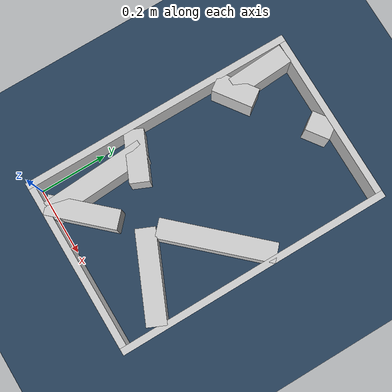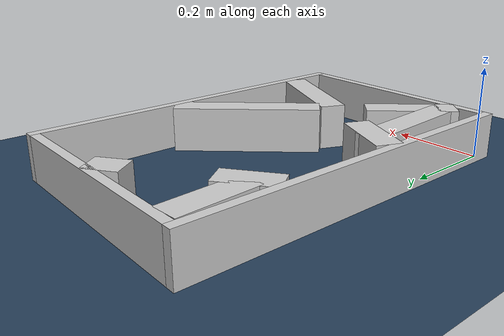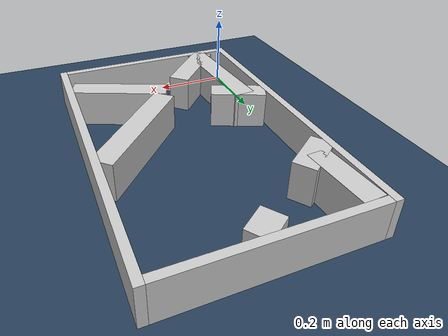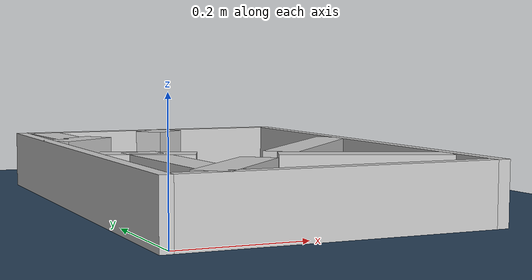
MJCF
<?xml version="1.0" ?>
<mujoco model="generated_real_template">
  <compiler angle="degree"/>
  <option timestep="0.002" integrator="implicitfast" iterations="100" cone="elliptic"/>
  <default>
    <geom density="1"/>
  </default>
  <asset>
    <texture builtin="gradient" height="3072" rgb1="0.3 0.5 0.7" rgb2="0 0 0" type="skybox" width="512"/>
    <texture builtin="checker" height="300" mark="edge" markrgb="0.8 0.8 0.8" name="groundplane" rgb1="0.2 0.3 0.4" rgb2="0.1 0.2 0.3" type="2d" width="300"/>
    <material name="groundplane" reflectance="0.2" texrepeat="5 5" texture="groundplane" texuniform="true"/>
  </asset>
  <worldbody>
    <light dir="0 0 -1" directional="true" pos="0 0 1.5"/>
    <geom name="floor" type="plane" condim="4" friction="0.5 0.005 0.001" material="groundplane" size="0 0 0.05"/>
    <body name="walls">
      <geom name="wall_boundary_left" type="box" condim="4" friction="1.0 0.005 0.0001" rgba="0.8 0.8 0.8 1" pos="-0.010000 0.387500 0.050000" euler="0 0 0.000000" size="0.010000 0.407500 0.050000"/>
      <geom name="wall_boundary_right" type="box" condim="4" friction="1.0 0.005 0.0001" rgba="0.8 0.8 0.8 1" pos="0.500000 0.387500 0.050000" euler="0 0 0.000000" size="0.010000 0.407500 0.050000"/>
      <geom name="wall_boundary_bottom" type="box" condim="4" friction="1.0 0.005 0.0001" rgba="0.8 0.8 0.8 1" pos="0.245000 -0.010000 0.050000" euler="0 0 0.000000" size="0.245000 0.010000 0.050000"/>
      <geom name="wall_boundary_top" type="box" condim="4" friction="1.0 0.005 0.0001" rgba="0.8 0.8 0.8 1" pos="0.245000 0.785000 0.050000" euler="0 0 0.000000" size="0.245000 0.010000 0.050000"/>
      <geom name="wall_inner_1_1" type="box" condim="4" friction="1.0 0.005 0.0001" rgba="0.8 0.8 0.8 1" pos="0.377420 0.344614 0.050000" euler="0 0 -132.879434" size="0.164146 0.028500 0.050000"/>
      <geom name="wall_inner_1_2" type="box" condim="4" friction="1.0 0.005 0.0001" rgba="0.8 0.8 0.8 1" pos="0.126437 0.074330 0.050000" euler="0 0 -132.879434" size="0.101434 0.028500 0.050000"/>
      <geom name="wall_inner_2_1" type="box" condim="4" friction="1.0 0.005 0.0001" rgba="0.8 0.8 0.8 1" pos="0.048908 0.603140 0.050000" euler="0 0 35.695710" size="0.060222 0.028500 0.050000"/>
      <geom name="wall_inner_2_2" type="box" condim="4" friction="1.0 0.005 0.0001" rgba="0.8 0.8 0.8 1" pos="0.254447 0.750811 0.050000" euler="0 0 35.695710" size="0.036063 0.028500 0.050000"/>
      <geom name="wall_inner_3_1" type="box" condim="4" friction="1.0 0.005 0.0001" rgba="0.8 0.8 0.8 1" pos="0.035673 0.689446 0.050000" euler="0 0 -86.389048" size="0.085724 0.028500 0.050000"/>
      <geom name="wall_inner_3_2" type="box" condim="4" friction="1.0 0.005 0.0001" rgba="0.8 0.8 0.8 1" pos="0.069682 0.150532 0.050000" euler="0 0 -86.389048" size="0.150832 0.028500 0.050000"/>
      <geom name="wall_inner_4_1" type="box" condim="4" friction="1.0 0.005 0.0001" rgba="0.8 0.8 0.8 1" pos="0.369522 0.144735 0.050000" euler="0 0 156.463905" size="0.131410 0.028500 0.050000"/>
      <geom name="wall_inner_4_2" type="box" condim="4" friction="1.0 0.005 0.0001" rgba="0.8 0.8 0.8 1" pos="0.068013 0.276061 0.050000" euler="0 0 156.463905" size="0.074185 0.028500 0.050000"/>
    </body>
  </worldbody>
</mujoco>
